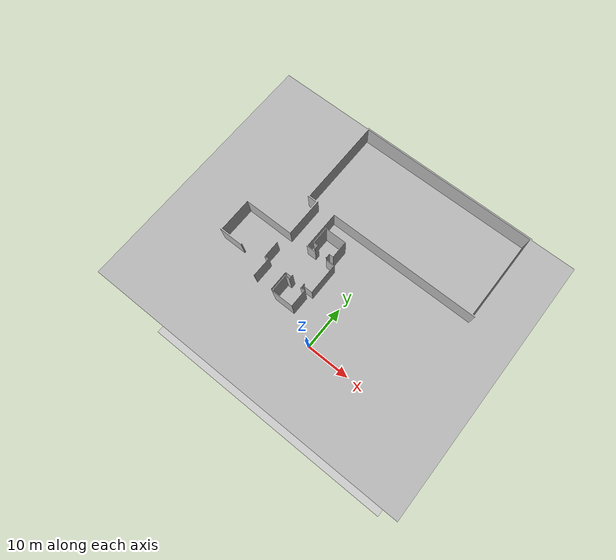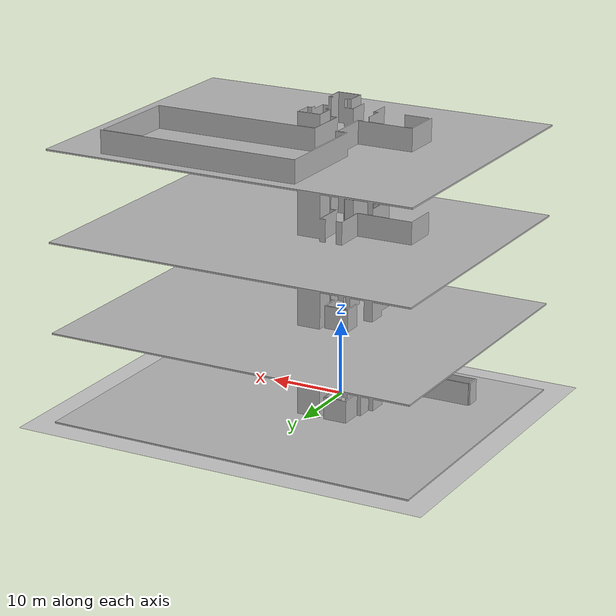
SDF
<?xml version="1.0"?>

<sdf version='1.4'>

<world name='default'>

      <include>
      <uri>model://sun</uri>
    </include>
    <!-- A ground plane -->
    <include>
      <uri>model://ground_plane</uri>
    </include>

<model name="multi_floor_test2">
<include>
          <static>true</static>
          <uri>model://multi_floor_test_2</uri>
	  <pose>-23 -13.5 0 0 0 0</pose>
</include>
</model>

 <light type="point" name="point1">
      <pose>-3 -4 1 0 0 0</pose>
      <diffuse>127 127 127 1</diffuse>
      <specular>.1 .1 .1 1</specular>
      <attenuation>
        <range>20</range>
        <linear>0.01</linear>
        <constant>0.5</constant>
        <quadratic>0.00</quadratic>
      </attenuation>
      <cast_shadows>false</cast_shadows>
    </light>

 <light type="point" name="point2">
      <pose>0 -4 1 0 0 0</pose>
      <diffuse>127 127 127 1</diffuse>
      <specular>.1 .1 .1 1</specular>
      <attenuation>
        <range>20</range>
        <linear>0.01</linear>
        <constant>0.5</constant>
        <quadratic>0.00</quadratic>
      </attenuation>
      <cast_shadows>false</cast_shadows>
    </light>

 <light type="point" name="point3">
      <pose>14 -4 1 0 0 0</pose>
      <diffuse>127 127 127 1</diffuse>
      <specular>.1 .1 .1 1</specular>
      <attenuation>
        <range>20</range>
        <linear>0.01</linear>
        <constant>0.5</constant>
        <quadratic>0.00</quadratic>
      </attenuation>
      <cast_shadows>false</cast_shadows>
    </light>

  </world>
</sdf>

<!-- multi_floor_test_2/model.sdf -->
<sdf version='1.6'>
  <model name='multi_floor_test_2'>
<link name='link'>
      <self_collide>0</self_collide>
      <kinematic>0</kinematic>
      <visual name='link'>
        <geometry>
<mesh>
<uri>model://multi_floor_test_2/meshes/multi_floor_test_2.STL </uri>
<scale> 1 1 1 </scale>

</mesh>

        </geometry>

        <cast_shadows>1</cast_shadows>
        <transparency>0</transparency>
      </visual>
      <collision name='Collision'>
        <laser_retro>0</laser_retro>
        <max_contacts>10</max_contacts>
        <geometry>

<mesh>
<uri>model://multi_floor_test_2/meshes/multi_floor_test_2.STL </uri>
<scale> 1 1 1 </scale>
</mesh>

        </geometry>
        <surface>
          <friction>
            <ode>
              <mu>1</mu>
              <mu2>1</mu2>
              <fdir1>0 0 0</fdir1>
              <slip1>0</slip1>
              <slip2>0</slip2>
            </ode>
            <torsional>
              <coefficient>1</coefficient>
              <patch_radius>0</patch_radius>
              <surface_radius>0</surface_radius>
              <use_patch_radius>1</use_patch_radius>
              <ode>
                <slip>0</slip>
              </ode>
            </torsional>
          </friction>
          <bounce>
            <restitution_coefficient>0</restitution_coefficient>
            <threshold>1e+06</threshold>
          </bounce>
          <contact>
            <collide_without_contact>0</collide_without_contact>
            <collide_without_contact_bitmask>1</collide_without_contact_bitmask>
            <collide_bitmask>1</collide_bitmask>
            <ode>
              <soft_cfm>0</soft_cfm>
              <soft_erp>0.2</soft_erp>
              <kp>1e+13</kp>
              <kd>1</kd>
              <max_vel>0.01</max_vel>
              <min_depth>0</min_depth>
            </ode>
            <bullet><uri>model://multi_floor_test_2/meshes/multi_floor_test_2.STL<scale> 1 1 1 </scale></uri>
<scale>1 1 1</scale>
              <split_impulse>1</split_impulse>
              <split_impulse_penetration_threshold>-0.01</split_impulse_penetration_threshold>
              <soft_cfm>0</soft_cfm>
              <soft_erp>0.2</soft_erp>
              <kp>1e+13</kp>
              <kd>1</kd>
            </bullet>
          </contact>
        </surface>
      </collision>
    </link>
</model>
</sdf>
